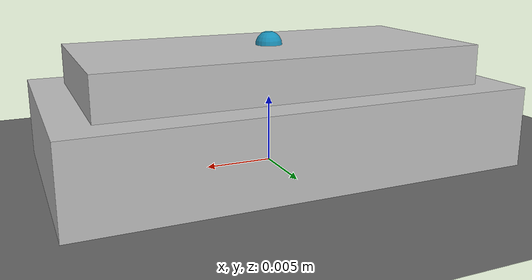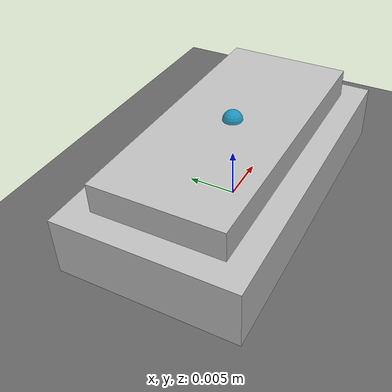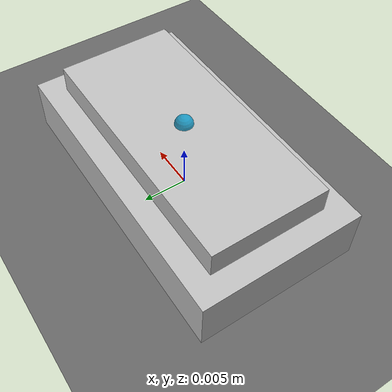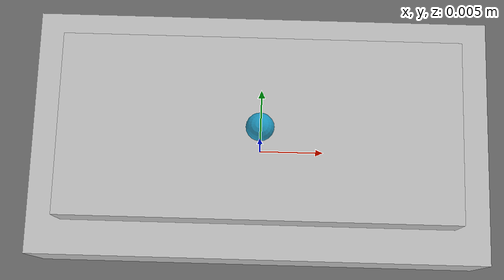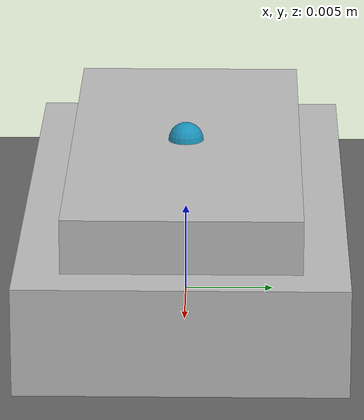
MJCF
<mujoco model="keyboard_keycap_175u">
  <compiler angle="radian" autolimits="true"/>
  <option gravity="0 0 -9.81" timestep="0.002"/>
  <asset>
    <material name="pbt_gray" rgba="0.75 0.75 0.75 1" specular="0.1" shininess="0.2" reflectance="0.02"/>
  </asset>
  <worldbody>
    <geom name="ground" type="plane" size="1 1 0.1" pos="0 0 0" friction="0.8 0.005 0.0001" rgba="0.4 0.4 0.4 1"/>
    <body name="keycap_175u" pos="0 0 0">
      <inertial pos="0 0 0.0045" mass="0.0045" diaginertia="1.5e-7 5.0e-7 5.0e-7"/>
      <!-- freejoint added in integration scene -->
      <geom name="base" type="box" size="0.01667 0.009 0.003" pos="0 0 0.003" material="pbt_gray" density="1300" friction="0.6 0.005 0.0001" condim="4" priority="1"/>
      <geom name="top"  type="box" size="0.01417 0.0065 0.0015" pos="0 0 0.0075" material="pbt_gray" density="1300" friction="0.6 0.005 0.0001" condim="4" priority="1"/>
      <site name="stem_clip"     type="sphere" size="0.001" pos="0 0 0"       rgba="1 0.2 0.2 0.8"/>
      <site name="vacuum_grasp"  type="sphere" size="0.001" pos="0 0 0.009"   rgba="0 0.6 0.8 0.8"/>
      <site name="keycap_center" type="sphere" size="0.001" pos="0 0 0.0045"  rgba="1 1 0 0.4"/>
    </body>
  </worldbody>
</mujoco>
